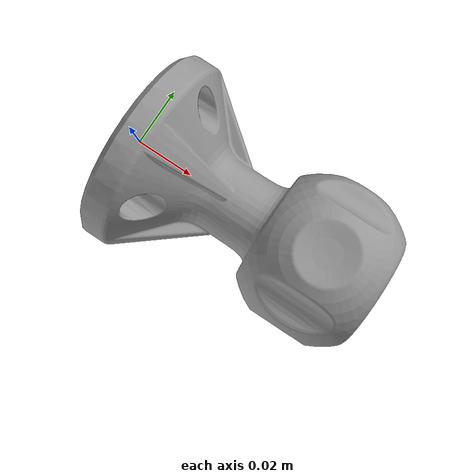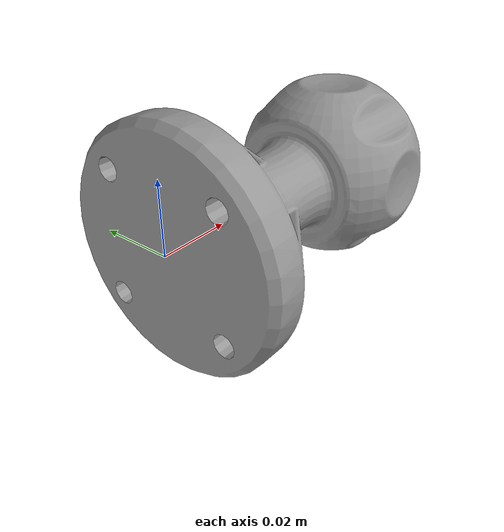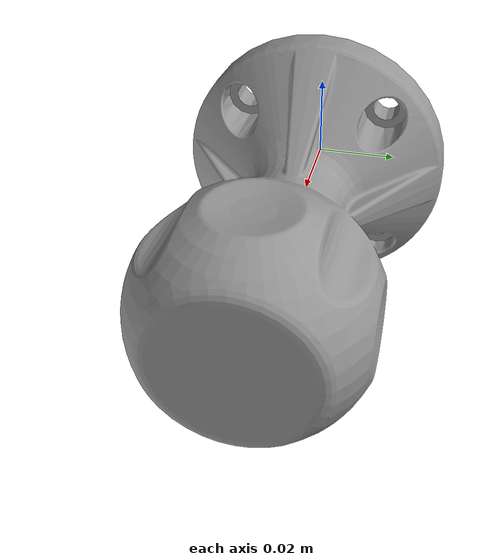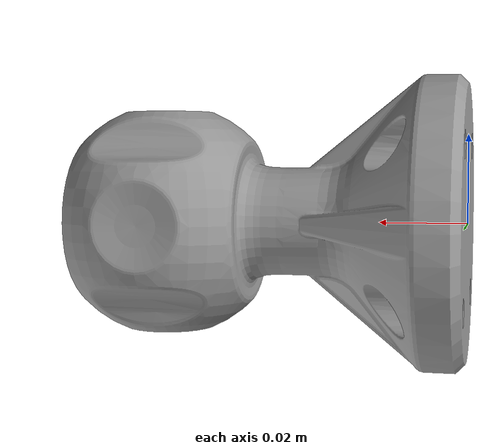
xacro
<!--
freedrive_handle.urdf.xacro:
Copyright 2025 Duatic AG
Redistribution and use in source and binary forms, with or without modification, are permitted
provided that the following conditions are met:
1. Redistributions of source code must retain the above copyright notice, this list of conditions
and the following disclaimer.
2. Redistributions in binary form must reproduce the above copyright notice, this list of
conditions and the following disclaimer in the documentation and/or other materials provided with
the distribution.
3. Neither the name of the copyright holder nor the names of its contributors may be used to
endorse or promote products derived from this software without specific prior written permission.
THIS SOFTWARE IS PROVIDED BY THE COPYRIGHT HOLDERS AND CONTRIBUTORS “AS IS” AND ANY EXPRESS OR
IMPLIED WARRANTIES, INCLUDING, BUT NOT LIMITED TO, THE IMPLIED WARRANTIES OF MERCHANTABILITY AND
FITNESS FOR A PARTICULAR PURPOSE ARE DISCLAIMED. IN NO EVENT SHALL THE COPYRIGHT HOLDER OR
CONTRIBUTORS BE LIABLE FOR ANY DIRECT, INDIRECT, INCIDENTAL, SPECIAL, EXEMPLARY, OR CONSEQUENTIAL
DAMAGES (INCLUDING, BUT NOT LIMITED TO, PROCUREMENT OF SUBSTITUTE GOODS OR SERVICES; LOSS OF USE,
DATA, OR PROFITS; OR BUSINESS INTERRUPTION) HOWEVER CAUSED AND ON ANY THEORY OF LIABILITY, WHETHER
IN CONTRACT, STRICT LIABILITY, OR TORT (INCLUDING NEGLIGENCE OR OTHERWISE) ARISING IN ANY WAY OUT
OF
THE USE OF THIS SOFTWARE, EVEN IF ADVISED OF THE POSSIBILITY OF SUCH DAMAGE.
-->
<robot name="weight_on_world" xmlns:xacro="http://www.ros.org/wiki/xacro">

  <xacro:arg name="tf_prefix" default="" />

  <xacro:include filename="$(find dynaarm_end_effectors)/urdf/freedrive_handle.urdf.xacro" />

  <link name="base_link" />

  <!-- Add platform to world -->
  <xacro:freedrive_handle tf_prefix="$(arg tf_prefix)"
              parent="base_link">
    <origin xyz="0 0 0.0" rpy="0 0 0" />
  </xacro:freedrive_handle>

</robot>

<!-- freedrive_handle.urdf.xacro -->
<robot name="freedrive_handle" xmlns:xacro="http://www.ros.org/wiki/xacro">

  <!-- Link Definition -->
<xacro:macro name="freedrive_handle" params="tf_prefix parent *origin">

  <link name="${tf_prefix}freedrive_handle_link">

    <!-- Inertial Properties -->
    <inertial>
      <origin xyz="0.0423 0 0" rpy="0 0 0"/>
      <mass value="0.149"/>
      <inertia
        ixx=" 0.0000520" ixy="0.0"  ixz="0.0"
        iyy="0.0001585" iyz="0.0"
        izz="0.0001585"/>
    </inertial>

    <!-- Visual -->
    <visual>
      <origin xyz="0 0 0" rpy="0 0 0"/>
      <geometry>
      <mesh filename="file://$(find dynaarm_end_effectors)/meshes/freedrive_handle_mesh.stl" scale="1 1 1"/>
      </geometry>
      <material name="gray">
        <color rgba="0.6 0.6 0.6 1.0"/>
      </material>
    </visual>

    <collision>
      <origin xyz="0 0 0" rpy="0 0 0"/>
      <geometry>
      <mesh filename="file://$(find dynaarm_end_effectors)/meshes/freedrive_handle_mesh.stl" scale="1 1 1"/>
      </geometry>
    </collision>

  </link>

  <!-- Fixed Joint to parent link -->
  <joint name="${tf_prefix}freedrive_handle_joint" type="fixed">
    <parent link="${parent}"/>
    <child link="${tf_prefix}freedrive_handle_link"/>
    <xacro:insert_block name="origin" />
  </joint>

</xacro:macro>

</robot>
